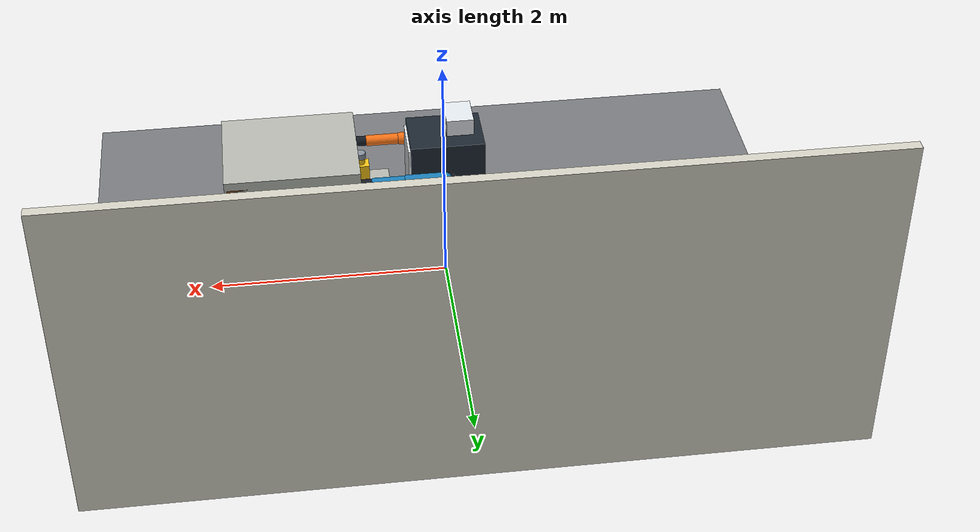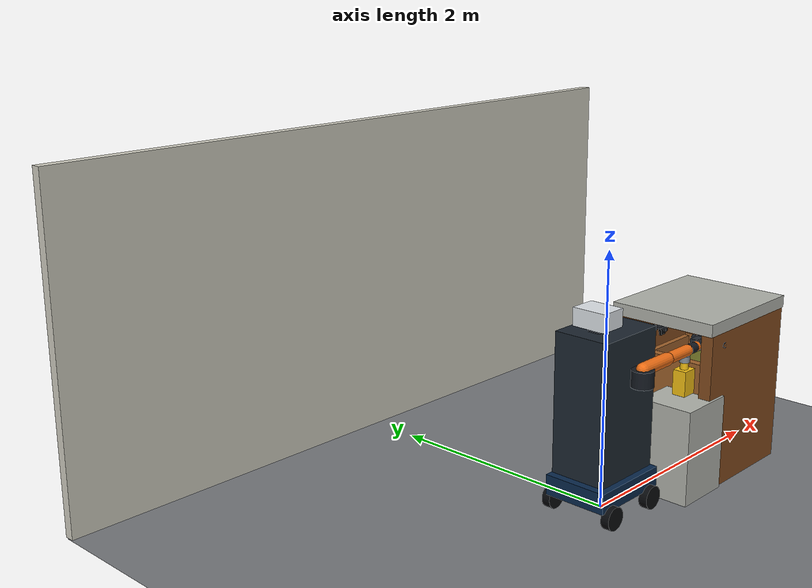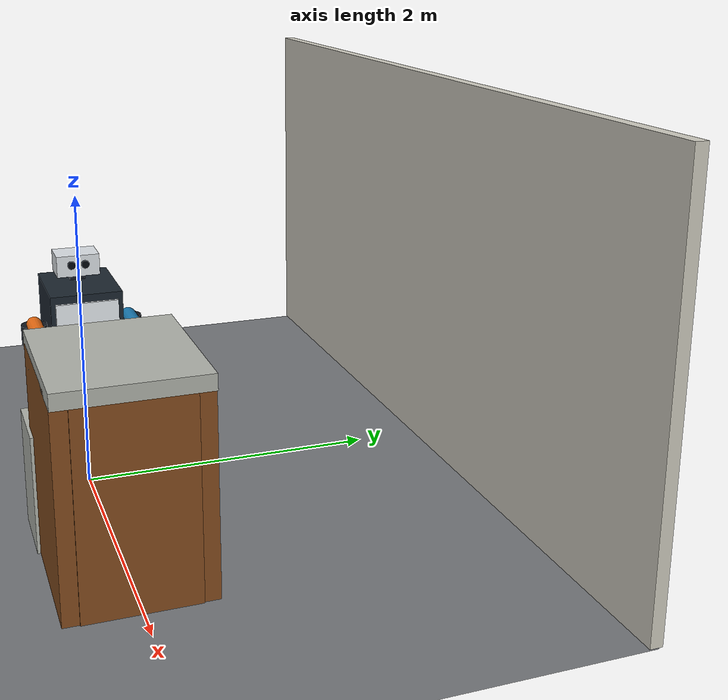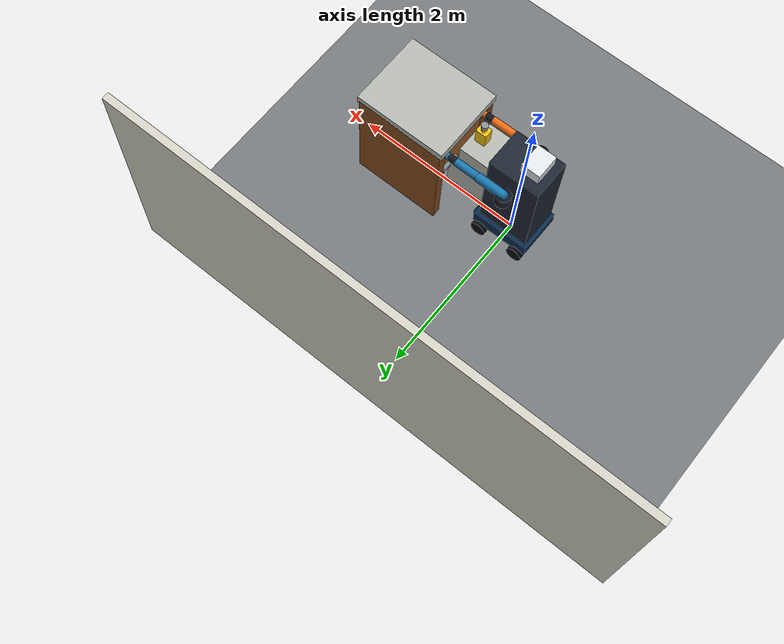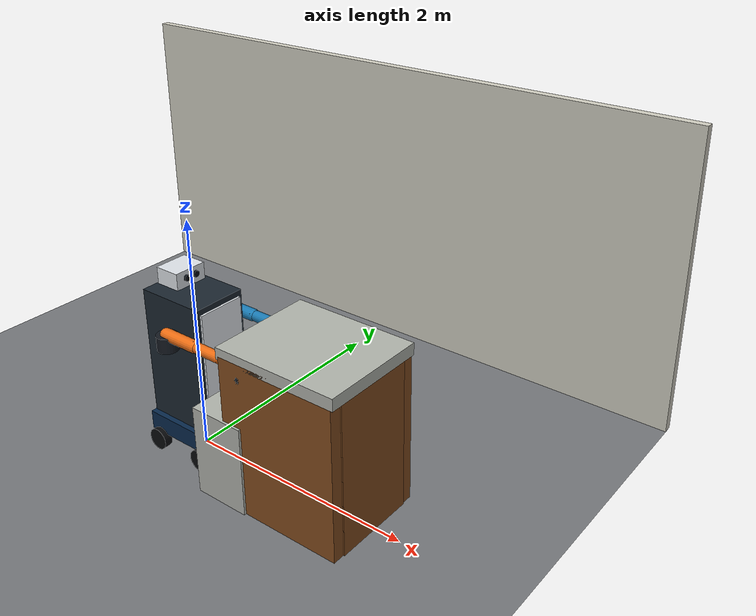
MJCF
<mujoco model="hwr_bimanual_kitchen_drawer_v1">
  <compiler angle="radian" autolimits="true" inertiafromgeom="true"/>
  <option timestep="0.002" gravity="0 0 -9.81" integrator="implicitfast"><flag multiccd="enable"/></option>
  <size memory="128M"/>
  <visual><global offwidth="960" offheight="640"/><quality shadowsize="4096"/></visual>
  <asset>
    <include file="../common/robot_assets.xml"/>
    <texture name="tile_tex" type="2d" builtin="checker" width="512" height="512" rgb1="0.34 0.35 0.37" rgb2="0.58 0.59 0.60"/>
    <material name="tile" texture="tile_tex" texrepeat="12 10" roughness="0.72"/>
    <material name="cabinet" rgba="0.52 0.30 0.12 1" roughness="0.62"/>
    <material name="counter" rgba="0.70 0.71 0.68 1" roughness="0.34"/>
    <material name="drawer" rgba="0.62 0.38 0.17 1" roughness="0.55"/>
    <material name="steel" rgba="0.52 0.56 0.60 1" metallic="0.75" roughness="0.20"/>
    <material name="cleaner" rgba="0.96 0.76 0.08 1" roughness="0.38"/>
  </asset>
  <default><include file="../common/robot_defaults.xml"/></default>
  <worldbody>
    <geom name="floor" type="plane" size="3 2.5 0.1" material="tile"/>
    <geom name="wall_north" type="box" pos="0 2.48 1.35" size="3 0.04 1.35" rgba="0.82 0.81 0.76 1"/>
    <light name="key" pos="-1.4 -1.0 2.9" dir="0.4 0.3 -1" directional="true" castshadow="true" diffuse="0.90 0.80 0.68"/>
    <light name="fill" pos="2.2 -1.0 2.1" dir="-0.8 0.3 -0.5" directional="true" castshadow="true" diffuse="0.45 0.62 0.82"/>
    <camera name="third_person" pos="3.8 -4.3 3.0" xyaxes="0.75 0.66 0 -0.33 0.38 0.86" fovy="48"/>
    <camera name="room_overview" pos="0 0 5.2" xyaxes="1 0 0 0 1 0" fovy="54"/>
    <include file="../common/robot_body.xml"/>
    <body name="cleaner_start_counter" pos="0.67 -0.25 0">
      <geom name="cleaner_start_support" type="box" pos="0 0 0.38" size="0.24 0.22 0.38" material="counter"/>
    </body>
    <body name="kitchen_cabinet" pos="1.25 0 0">
      <geom name="cabinet_left" type="box" pos="0 0.40 0.65" size="0.52 0.05 0.65" material="cabinet"/>
      <geom name="cabinet_right" type="box" pos="0 -0.40 0.65" size="0.52 0.05 0.65" material="cabinet"/>
      <geom name="cabinet_back" type="box" pos="0.48 0 0.65" size="0.05 0.35 0.65" material="cabinet"/>
      <geom name="counter_top" type="box" pos="0 0 1.32" size="0.54 0.45 0.05" material="counter"/>
      <body name="spring_drawer" pos="0 0 0.62">
        <joint name="drawer_slide" type="slide" axis="-1 0 0" range="0 0.36" springref="0" stiffness="180" damping="12"/>
        <geom name="drawer_bottom" type="box" pos="0 0 0.04" size="0.42 0.34 0.025" mass="1.3" material="drawer"/>
        <geom name="drawer_front" type="box" pos="-0.42 0 0.18" size="0.035 0.37 0.20" mass="0.45" material="drawer"/>
        <geom name="drawer_back" type="box" pos="0.40 0 0.16" size="0.025 0.34 0.14" mass="0.25" material="drawer"/>
        <geom name="drawer_left_wall" type="box" pos="0 0.33 0.15" size="0.40 0.025 0.13" mass="0.20" material="drawer"/>
        <geom name="drawer_right_wall" type="box" pos="0 -0.33 0.15" size="0.40 0.025 0.13" mass="0.20" material="drawer"/>
        <geom name="drawer_handle" type="capsule" fromto="-0.49 0.10 0.20 -0.49 0.32 0.20" size="0.025" mass="0.15" material="steel"/>
        <site name="payload_target" pos="0 -0.10 0.15" size="0.22 0.16 0.11" rgba="0.1 0.9 0.2 0.08"/>
      </body>
    </body>
    <body name="cleaner_payload" pos="0.67 -0.25 0.79">
      <freejoint name="payload_free"/>
      <geom name="cleaner_body" type="box" pos="0 0 0.10" size="0.065 0.055 0.10" mass="0.52" material="cleaner"/>
      <geom name="cleaner_neck" type="cylinder" pos="0 0 0.23" size="0.032 0.04" mass="0.08" material="cleaner"/>
      <geom name="cleaner_cap" type="cylinder" pos="0 0 0.28" size="0.040 0.025" mass="0.05" material="steel"/>
    </body>
  </worldbody>
  <contact>
    <include file="../common/robot_contacts.xml"/>
    <pair geom1="left_gripper_left_pad" geom2="drawer_handle" condim="4" friction="4 4 0.05 0.005 0.005"/>
    <pair geom1="left_gripper_right_pad" geom2="drawer_handle" condim="4" friction="4 4 0.05 0.005 0.005"/>
    <pair geom1="right_gripper_left_pad" geom2="cleaner_body" condim="4" friction="4 4 0.05 0.005 0.005"/>
    <pair geom1="right_gripper_right_pad" geom2="cleaner_body" condim="4" friction="4 4 0.05 0.005 0.005"/>
  </contact>
  <actuator><include file="../common/robot_actuators.xml"/></actuator>
  <sensor><include file="../common/robot_sensors.xml"/></sensor>
</mujoco>

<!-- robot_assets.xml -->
<mujocoinclude>
  <material name="chassis_material" rgba="0.035 0.16 0.30 1" metallic="0.3" roughness="0.28"/>
  <material name="body_material" rgba="0.11 0.15 0.19 1" metallic="0.22" roughness="0.34"/>
  <material name="panel_material" rgba="0.92 0.94 0.96 1" metallic="0.08" roughness="0.28"/>
  <material name="arm_material" rgba="0.93 0.43 0.08 1" metallic="0.18" roughness="0.28"/>
  <material name="arm_secondary_material" rgba="0.10 0.48 0.70 1" metallic="0.18" roughness="0.28"/>
  <material name="joint_material" rgba="0.08 0.10 0.13 1" metallic="0.65" roughness="0.24"/>
  <material name="gripper_material" rgba="0.15 0.17 0.20 1" metallic="0.28" roughness="0.48"/>
  <material name="gripper_pad_material" rgba="0.035 0.045 0.055 1" metallic="0.02" roughness="0.86"/>
  <material name="wheel_material" rgba="0.035 0.04 0.05 1" metallic="0.05" roughness="0.72"/>
  <material name="camera_material" rgba="0.88 0.90 0.92 1" metallic="0.16" roughness="0.26"/>
  <material name="camera_lens_material" rgba="0.015 0.035 0.06 1" metallic="0.38" roughness="0.12"/>
</mujocoinclude>

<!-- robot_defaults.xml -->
<mujocoinclude>
  <joint damping="1.0" armature="0.02" frictionloss="0.05"/>
  <geom condim="4" friction="0.9 0.01 0.001" solref="0.006 1" solimp="0.9 0.95 0.001"/>
  <default class="arm_joint">
    <joint damping="2.0" armature="0.05"/>
  </default>
  <default class="finger_joint">
    <joint damping="3.0" armature="0.01"/>
  </default>
  <default class="finger_pad">
    <geom condim="4" friction="3.0 0.04 0.004" solref="0.004 1"/>
  </default>
</mujocoinclude>

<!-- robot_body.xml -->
<mujocoinclude>
  <body name="robot_base" pos="0 0 0.22">
    <freejoint name="base_free"/>
    <geom name="chassis_collision" type="box" size="0.34 0.26 0.08" density="400"
          material="chassis_material"/>
    <geom name="body_box_collision" type="box" pos="-0.01 0 0.65" size="0.30 0.23 0.55"
          density="65" material="body_material"/>
    <geom name="body_front_panel" type="box" pos="0.295 0 0.65" size="0.012 0.20 0.50"
          mass="0.05" contype="0" conaffinity="0" material="panel_material"/>
    <geom name="bumper_front" type="capsule" fromto="0.34 -0.21 0 0.34 0.21 0" size="0.035"
          density="300" material="joint_material"/>
    <site name="base_imu" pos="0 0 0.12" size="0.012" rgba="0 1 0 0"/>

    <body name="top_camera_head" pos="-0.12 0 1.31">
      <geom name="camera_head_pedestal" type="box" pos="0 0 -0.09" size="0.045 0.050 0.040"
            density="220" material="joint_material"/>
      <geom name="camera_head_housing" type="box" size="0.11 0.14 0.07" density="180"
            material="camera_material"/>
      <geom name="camera_rgb_lens" type="cylinder" pos="0.118 -0.045 0.01" size="0.026 0.012"
            quat="0.707107 0 0.707107 0" mass="0.02" contype="0" conaffinity="0"
            material="camera_lens_material"/>
      <geom name="camera_depth_lens" type="cylinder" pos="0.118 0.045 0.01" size="0.026 0.012"
            quat="0.707107 0 0.707107 0" mass="0.02" contype="0" conaffinity="0"
            material="camera_lens_material"/>
      <camera name="head_rgb" pos="0.13 -0.045 0.01" xyaxes="0 -1 0 0.16 0 0.987" fovy="66"/>
      <camera name="head_depth" pos="0.13 0.045 0.01" xyaxes="0 -1 0 0.16 0 0.987" fovy="66"/>
    </body>

    <body name="wheel_front_left" pos="0.24 0.27 -0.13">
      <joint name="wheel_front_left_joint" type="hinge" axis="0 1 0" limited="false" damping="0.15"/>
      <geom name="wheel_front_left_geom" type="cylinder" size="0.09 0.035"
            quat="0.707107 0.707107 0 0" density="450" material="wheel_material"
            friction="1.3 0.003 0.0002"/>
    </body>
    <body name="wheel_rear_left" pos="-0.24 0.27 -0.13">
      <joint name="wheel_rear_left_joint" type="hinge" axis="0 1 0" limited="false" damping="0.15"/>
      <geom name="wheel_rear_left_geom" type="cylinder" size="0.09 0.035"
            quat="0.707107 0.707107 0 0" density="450" material="wheel_material"
            friction="1.3 0.003 0.0002"/>
    </body>
    <body name="wheel_front_right" pos="0.24 -0.27 -0.13">
      <joint name="wheel_front_right_joint" type="hinge" axis="0 1 0" limited="false" damping="0.15"/>
      <geom name="wheel_front_right_geom" type="cylinder" size="0.09 0.035"
            quat="0.707107 0.707107 0 0" density="450" material="wheel_material"
            friction="1.3 0.003 0.0002"/>
    </body>
    <body name="wheel_rear_right" pos="-0.24 -0.27 -0.13">
      <joint name="wheel_rear_right_joint" type="hinge" axis="0 1 0" limited="false" damping="0.15"/>
      <geom name="wheel_rear_right_geom" type="cylinder" size="0.09 0.035"
            quat="0.707107 0.707107 0 0" density="450" material="wheel_material"
            friction="1.3 0.003 0.0002"/>
    </body>

    <body name="right_shoulder_pan_link" pos="0.02 -0.31 0.82" gravcomp="1">
      <joint name="right_arm_joint_1" class="arm_joint" type="hinge" axis="0 0 1" range="-3.05 3.05"/>
      <geom type="cylinder" size="0.085 0.065" pos="0 0 0.065" density="620" material="joint_material"/>
      <body name="right_upper_arm_link" pos="0 0 0.13" gravcomp="1">
        <joint name="right_arm_joint_2" class="arm_joint" type="hinge" axis="0 1 0" range="-1.75 1.45"/>
        <geom type="capsule" fromto="0 0 0 0.31 0 0" size="0.050" density="560" material="arm_material"/>
        <body name="right_forearm_link" pos="0.31 0 0" gravcomp="1">
          <joint name="right_arm_joint_3" class="arm_joint" type="hinge" axis="0 1 0" range="-2.55 2.55"/>
          <geom type="capsule" fromto="0 0 0 0.27 0 0" size="0.044" density="520" material="arm_material"/>
          <body name="right_wrist_roll_link" pos="0.27 0 0" gravcomp="1">
            <joint name="right_arm_joint_4" class="arm_joint" type="hinge" axis="1 0 0" range="-3.05 3.05"/>
            <geom type="capsule" fromto="0 0 0 0.09 0 0" size="0.040" density="500" material="joint_material"/>
            <body name="right_wrist_pitch_link" pos="0.09 0 0" gravcomp="1">
              <joint name="right_arm_joint_5" class="arm_joint" type="hinge" axis="0 1 0" range="-2.10 2.10"/>
              <geom type="capsule" fromto="0 0 0 0.08 0 0" size="0.037" density="480" material="arm_material"/>
              <body name="right_wrist_yaw_link" pos="0.08 0 0" gravcomp="1">
                <joint name="right_arm_joint_6" class="arm_joint" type="hinge" axis="1 0 0" range="-3.05 3.05"/>
                <geom type="cylinder" size="0.041 0.035" quat="0.707107 0 0.707107 0"
                      density="470" material="joint_material"/>
                <body name="right_gripper_palm" pos="0.065 0 0" gravcomp="1">
                  <geom name="right_gripper_palm_shell" type="box" size="0.050 0.090 0.026"
                        density="470" material="gripper_material"/>
                  <geom name="right_gripper_wrist_adapter" type="cylinder" pos="-0.035 0 0"
                        size="0.038 0.025" quat="0.707107 0 0.707107 0"
                        density="420" material="joint_material"/>
                  <camera name="wrist_rgb" pos="0.012 0 0.060" xyaxes="0 -1 0 0 0 1" fovy="72"/>
                  <site name="right_grasp_center" pos="0.190 0 -0.045" size="0.012" rgba="0 1 0 0"/>
                  <body name="right_gripper_left_finger" pos="0.070 0.122 -0.005" gravcomp="1">
                    <joint name="right_gripper_left_finger_joint" class="finger_joint" type="slide"
                           axis="0 -1 0" range="0 0.095"/>
                    <geom name="right_gripper_left_knuckle" type="cylinder" size="0.026 0.018"
                          quat="0.707107 0.707107 0 0" density="390"
                          material="joint_material"/>
                    <geom name="right_gripper_left_proximal" type="capsule"
                          fromto="0 0 0 0.100 0 -0.012" size="0.018" density="360"
                          material="gripper_material"/>
                    <geom name="right_gripper_left_distal" type="capsule"
                          fromto="0.100 0 -0.012 0.145 0 -0.047" size="0.016" density="340"
                          material="gripper_material"/>
                    <geom name="right_gripper_left_tip" type="capsule"
                          fromto="0.145 0 -0.047 0.145 0 -0.075" size="0.014" density="330"
                          material="gripper_material"/>
                    <geom name="right_gripper_left_pad" class="finger_pad" type="box"
                          size="0.045 0.012 0.030" pos="0.133 0 -0.045" euler="0 -0.30 0"
                          density="400" material="gripper_pad_material"/>
                  </body>
                  <body name="right_gripper_right_finger" pos="0.070 -0.122 -0.005" gravcomp="1">
                    <joint name="right_gripper_right_finger_joint" class="finger_joint" type="slide"
                           axis="0 1 0" range="0 0.095"/>
                    <geom name="right_gripper_right_knuckle" type="cylinder" size="0.026 0.018"
                          quat="0.707107 0.707107 0 0" density="390"
                          material="joint_material"/>
                    <geom name="right_gripper_right_proximal" type="capsule"
                          fromto="0 0 0 0.100 0 -0.012" size="0.018" density="360"
                          material="gripper_material"/>
                    <geom name="right_gripper_right_distal" type="capsule"
                          fromto="0.100 0 -0.012 0.145 0 -0.047" size="0.016" density="340"
                          material="gripper_material"/>
                    <geom name="right_gripper_right_tip" type="capsule"
                          fromto="0.145 0 -0.047 0.145 0 -0.075" size="0.014" density="330"
                          material="gripper_material"/>
                    <geom name="right_gripper_right_pad" class="finger_pad" type="box"
                          size="0.045 0.012 0.030" pos="0.133 0 -0.045" euler="0 -0.30 0"
                          density="400" material="gripper_pad_material"/>
                  </body>
                </body>
              </body>
            </body>
          </body>
        </body>
      </body>
    </body>

    <body name="left_shoulder_pan_link" pos="0.02 0.31 0.82" gravcomp="1">
      <joint name="left_arm_joint_1" class="arm_joint" type="hinge" axis="0 0 1" range="-3.05 3.05"/>
      <geom type="cylinder" size="0.085 0.065" pos="0 0 0.065" density="620" material="joint_material"/>
      <body name="left_upper_arm_link" pos="0 0 0.13" gravcomp="1">
        <joint name="left_arm_joint_2" class="arm_joint" type="hinge" axis="0 1 0" range="-1.75 1.45"/>
        <geom type="capsule" fromto="0 0 0 0.31 0 0" size="0.050" density="560" material="arm_secondary_material"/>
        <body name="left_forearm_link" pos="0.31 0 0" gravcomp="1">
          <joint name="left_arm_joint_3" class="arm_joint" type="hinge" axis="0 1 0" range="-2.55 2.55"/>
          <geom type="capsule" fromto="0 0 0 0.27 0 0" size="0.044" density="520" material="arm_secondary_material"/>
          <body name="left_wrist_roll_link" pos="0.27 0 0" gravcomp="1">
            <joint name="left_arm_joint_4" class="arm_joint" type="hinge" axis="1 0 0" range="-3.05 3.05"/>
            <geom type="capsule" fromto="0 0 0 0.09 0 0" size="0.040" density="500" material="joint_material"/>
            <body name="left_wrist_pitch_link" pos="0.09 0 0" gravcomp="1">
              <joint name="left_arm_joint_5" class="arm_joint" type="hinge" axis="0 1 0" range="-2.10 2.10"/>
              <geom type="capsule" fromto="0 0 0 0.08 0 0" size="0.037" density="480" material="arm_secondary_material"/>
              <body name="left_wrist_yaw_link" pos="0.08 0 0" gravcomp="1">
                <joint name="left_arm_joint_6" class="arm_joint" type="hinge" axis="1 0 0" range="-3.05 3.05"/>
                <geom type="cylinder" size="0.041 0.035" quat="0.707107 0 0.707107 0"
                      density="470" material="joint_material"/>
                <body name="left_gripper_palm" pos="0.065 0 0" gravcomp="1">
                  <geom name="left_gripper_palm_shell" type="box" size="0.050 0.090 0.026"
                        density="470" material="gripper_material"/>
                  <geom name="left_gripper_wrist_adapter" type="cylinder" pos="-0.035 0 0"
                        size="0.038 0.025" quat="0.707107 0 0.707107 0"
                        density="420" material="joint_material"/>
                  <camera name="left_wrist_rgb" pos="0.012 0 0.060" xyaxes="0 -1 0 0 0 1" fovy="72"/>
                  <site name="left_grasp_center" pos="0.190 0 -0.045" size="0.012" rgba="0 1 0 0"/>
                  <body name="left_gripper_left_finger" pos="0.070 0.122 -0.005" gravcomp="1">
                    <joint name="left_gripper_left_finger_joint" class="finger_joint" type="slide"
                           axis="0 -1 0" range="0 0.095"/>
                    <geom name="left_gripper_left_knuckle" type="cylinder" size="0.026 0.018"
                          quat="0.707107 0.707107 0 0" density="390"
                          material="joint_material"/>
                    <geom name="left_gripper_left_proximal" type="capsule"
                          fromto="0 0 0 0.100 0 -0.012" size="0.018" density="360"
                          material="gripper_material"/>
                    <geom name="left_gripper_left_distal" type="capsule"
                          fromto="0.100 0 -0.012 0.145 0 -0.047" size="0.016" density="340"
                          material="gripper_material"/>
                    <geom name="left_gripper_left_tip" type="capsule"
                          fromto="0.145 0 -0.047 0.145 0 -0.075" size="0.014" density="330"
                          material="gripper_material"/>
                    <geom name="left_gripper_left_pad" class="finger_pad" type="box"
                          size="0.045 0.012 0.030" pos="0.133 0 -0.045" euler="0 -0.30 0"
                          density="400" material="gripper_pad_material"/>
                  </body>
                  <body name="left_gripper_right_finger" pos="0.070 -0.122 -0.005" gravcomp="1">
                    <joint name="left_gripper_right_finger_joint" class="finger_joint" type="slide"
                           axis="0 1 0" range="0 0.095"/>
                    <geom name="left_gripper_right_knuckle" type="cylinder" size="0.026 0.018"
                          quat="0.707107 0.707107 0 0" density="390"
                          material="joint_material"/>
                    <geom name="left_gripper_right_proximal" type="capsule"
                          fromto="0 0 0 0.100 0 -0.012" size="0.018" density="360"
                          material="gripper_material"/>
                    <geom name="left_gripper_right_distal" type="capsule"
                          fromto="0.100 0 -0.012 0.145 0 -0.047" size="0.016" density="340"
                          material="gripper_material"/>
                    <geom name="left_gripper_right_tip" type="capsule"
                          fromto="0.145 0 -0.047 0.145 0 -0.075" size="0.014" density="330"
                          material="gripper_material"/>
                    <geom name="left_gripper_right_pad" class="finger_pad" type="box"
                          size="0.045 0.012 0.030" pos="0.133 0 -0.045" euler="0 -0.30 0"
                          density="400" material="gripper_pad_material"/>
                  </body>
                </body>
              </body>
            </body>
          </body>
        </body>
      </body>
    </body>
  </body>
</mujocoinclude>

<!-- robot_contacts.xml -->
<mujocoinclude>
  <exclude body1="robot_base" body2="right_shoulder_pan_link"/>
  <exclude body1="right_shoulder_pan_link" body2="right_upper_arm_link"/>
  <exclude body1="right_upper_arm_link" body2="right_forearm_link"/>
  <exclude body1="right_forearm_link" body2="right_wrist_roll_link"/>
  <exclude body1="right_wrist_roll_link" body2="right_wrist_pitch_link"/>
  <exclude body1="right_wrist_pitch_link" body2="right_wrist_yaw_link"/>
  <exclude body1="right_wrist_yaw_link" body2="right_gripper_palm"/>
  <exclude body1="right_gripper_palm" body2="right_gripper_left_finger"/>
  <exclude body1="right_gripper_palm" body2="right_gripper_right_finger"/>
  <exclude body1="robot_base" body2="left_shoulder_pan_link"/>
  <exclude body1="left_shoulder_pan_link" body2="left_upper_arm_link"/>
  <exclude body1="left_upper_arm_link" body2="left_forearm_link"/>
  <exclude body1="left_forearm_link" body2="left_wrist_roll_link"/>
  <exclude body1="left_wrist_roll_link" body2="left_wrist_pitch_link"/>
  <exclude body1="left_wrist_pitch_link" body2="left_wrist_yaw_link"/>
  <exclude body1="left_wrist_yaw_link" body2="left_gripper_palm"/>
  <exclude body1="left_gripper_palm" body2="left_gripper_left_finger"/>
  <exclude body1="left_gripper_palm" body2="left_gripper_right_finger"/>
</mujocoinclude>

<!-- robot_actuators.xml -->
<mujocoinclude>
  <velocity name="wheel_front_left_velocity" joint="wheel_front_left_joint" kv="18" forcerange="-30 30"/>
  <velocity name="wheel_rear_left_velocity" joint="wheel_rear_left_joint" kv="18" forcerange="-30 30"/>
  <velocity name="wheel_front_right_velocity" joint="wheel_front_right_joint" kv="18" forcerange="-30 30"/>
  <velocity name="wheel_rear_right_velocity" joint="wheel_rear_right_joint" kv="18" forcerange="-30 30"/>
  <position name="right_arm_joint_1_position" joint="right_arm_joint_1" kp="180" kv="24" forcerange="-75 75"/>
  <position name="right_arm_joint_2_position" joint="right_arm_joint_2" kp="180" kv="24" forcerange="-75 75"/>
  <position name="right_arm_joint_3_position" joint="right_arm_joint_3" kp="160" kv="20" forcerange="-60 60"/>
  <position name="right_arm_joint_4_position" joint="right_arm_joint_4" kp="100" kv="14" forcerange="-35 35"/>
  <position name="right_arm_joint_5_position" joint="right_arm_joint_5" kp="90" kv="12" forcerange="-30 30"/>
  <position name="right_arm_joint_6_position" joint="right_arm_joint_6" kp="70" kv="10" forcerange="-22 22"/>
  <position name="left_arm_joint_1_position" joint="left_arm_joint_1" kp="180" kv="24" forcerange="-75 75"/>
  <position name="left_arm_joint_2_position" joint="left_arm_joint_2" kp="180" kv="24" forcerange="-75 75"/>
  <position name="left_arm_joint_3_position" joint="left_arm_joint_3" kp="160" kv="20" forcerange="-60 60"/>
  <position name="left_arm_joint_4_position" joint="left_arm_joint_4" kp="100" kv="14" forcerange="-35 35"/>
  <position name="left_arm_joint_5_position" joint="left_arm_joint_5" kp="90" kv="12" forcerange="-30 30"/>
  <position name="left_arm_joint_6_position" joint="left_arm_joint_6" kp="70" kv="10" forcerange="-22 22"/>
  <position name="right_gripper_left_finger_position" joint="right_gripper_left_finger_joint"
            kp="260" kv="14" forcerange="-35 35"/>
  <position name="right_gripper_right_finger_position" joint="right_gripper_right_finger_joint"
            kp="260" kv="14" forcerange="-35 35"/>
  <position name="left_gripper_left_finger_position" joint="left_gripper_left_finger_joint"
            kp="260" kv="14" forcerange="-35 35"/>
  <position name="left_gripper_right_finger_position" joint="left_gripper_right_finger_joint"
            kp="260" kv="14" forcerange="-35 35"/>
</mujocoinclude>

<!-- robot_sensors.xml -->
<mujocoinclude>
  <gyro name="base_gyro" site="base_imu"/>
  <accelerometer name="base_accelerometer" site="base_imu"/>
</mujocoinclude>
